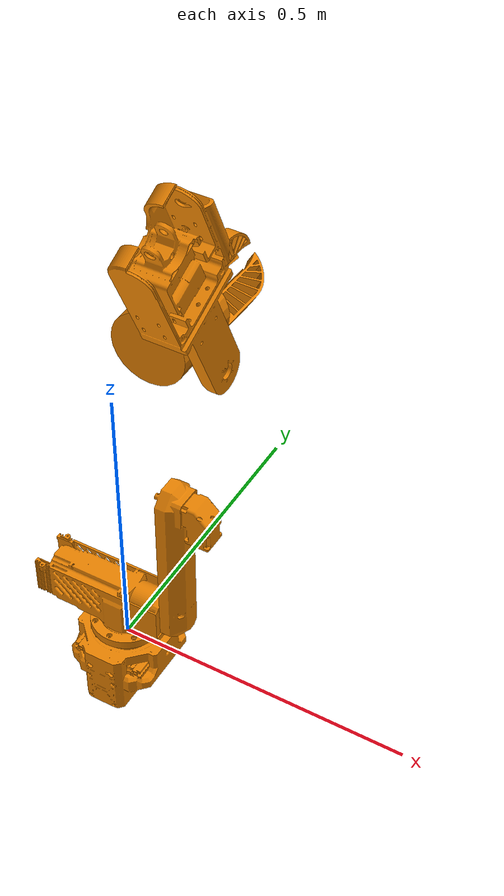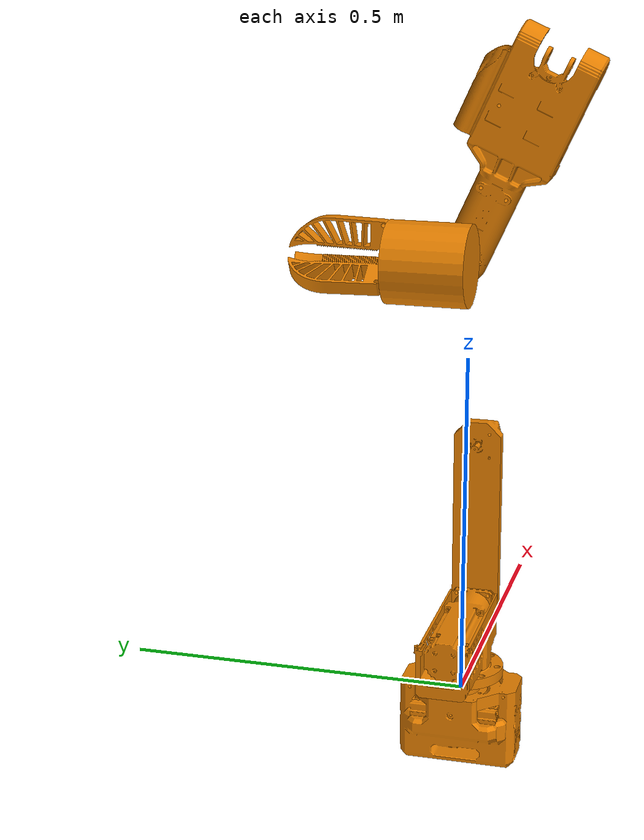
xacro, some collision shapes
<?xml version="1.0"?>
<robot xmlns:xacro="http://www.ros.org/wiki/xacro" name="test_rover_body">

  <xacro:include filename="$(find rover_arm_description)/urdf/rover_arm.urdf.xacro" />

  <link name="base_link"/>

  <xacro:rover_arm prefix="" parent="base_link">
    <origin xyz="0 0 0" rpy="0 0 0" />
  </xacro:rover_arm>

</robot>

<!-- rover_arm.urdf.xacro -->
<robot xmlns:xacro="http://www.ros.org/wiki/xacro" name="rover_arm">

  <xacro:macro name="rover_arm" params="parent prefix *origin">

  <!-- LINK OFFSETS -->
  <xacro:property name="base_rotation_offset" value="${pi / 2} 0 0" />
  <xacro:property name="j1_rotation_offset" value="${pi / 2} 0 0" />
  <xacro:property name="j2_rotation_offset" value="${pi / 6} 0 0" />
  <xacro:property name="j3_rotation_offset" value="${pi - 0.4366117} 0 0" />

  <!-- JOINT POSITIONS -->
  <xacro:property name="j1_joint_pos" value="0 0 0.024" />
  <xacro:property name="j2_joint_pos" value="0.0808 0 0.071" />
  <xacro:property name="j3_joint_pos" value="0.007 0 0.25" />
  <xacro:property name="ee_base_joint_pos" value="-0.028 0 0.2715" />
  <xacro:property name="slider_joint_pos" value="0 0.11 0" />
  <xacro:property name="finger1_joint_pos" value="-0.052384 0.134522 -0.016965" />
  <xacro:property name="finger1_joint_rotation" value="0 ${-pi / 6} 0" />
  <xacro:property name="finger2_joint_pos" value="0.011500 0.134522 0.053848" />
  <xacro:property name="finger2_joint_rotation" value="0 ${pi / 2} 0" />
  <xacro:property name="finger3_joint_pos" value="0.040884 0.134522 -0.036883" />
  <xacro:property name="finger3_joint_rotation" value="0 ${pi * 7 / 6} 0" />

  <!-- COLORS -->
  <!-- links color -->
  <material name="${prefix}links_color">
    <color rgba="0.9 0.5 0.0 1.0"/>
  </material>

  <!-- SLIDER TO FINGER CINEMATIC RELATION -->
  <xacro:property name="slider_length" value="0.05" />
  <xacro:property name="finger_rotation_upper_bound" value="${pi / 2}" />
  <!-- the formula used to calculate the multiplier is given by the total rotation distance divided by the total sliding distance -->
  <xacro:property name="relation_multip" value="${finger_rotation_upper_bound / slider_length}" />

  <!-- BASE LINK -->
  <link name="${prefix}base">
    <visual>
      <origin xyz="0 0 0" rpy="${base_rotation_offset}"/>
      <geometry>
        <mesh filename="package://rover_arm_description/meshes/visual/base.stl" scale="0.001 0.001 0.001"/>
      </geometry>
      <material name="${prefix}links_color"/>
    </visual>
    <collision>
      <origin xyz="0 0.015 -0.022" rpy="0 0 0"/>
      <geometry>
        <box size="0.153000 0.202000 0.122040"/>
      </geometry>
    </collision>
  </link>

  <link name="${prefix}j1">
    <visual>
      <origin xyz="0 0 0" rpy="${j1_rotation_offset}"/>
      <geometry>
        <mesh filename="package://rover_arm_description/meshes/visual/j1.stl" scale="0.001 0.001 0.001"/>
      </geometry>
      <material name="${prefix}links_color"/>
    </visual>
    <collision>
      <origin xyz="-0.035 0 0.065" rpy="0 0 0"/>
      <geometry>
        <box size="0.23 0.07 0.08"/>
      </geometry>
    </collision>
  </link>

  <link name="${prefix}j2">
    <visual>
      <origin xyz="0 0 0" rpy="${j2_rotation_offset}"/>
      <geometry>
        <mesh filename="package://rover_arm_description/meshes/visual/j2.stl" scale="0.001 0.001 0.001"/>
      </geometry>
      <material name="${prefix}links_color"/>
    </visual>
    <collision>
      <origin xyz="${0.05 / 2} 0 ${0.25 / 2}" rpy="0 0 0"/>
      <geometry>
        <box size="0.05 0.05 0.32"/>
      </geometry>
    </collision>
    <collision>
      <origin xyz="${0.05 + 0.05 / 2} 0 0.185" rpy="0 0 0"/>
      <geometry>
        <box size="0.05 0.05 0.17"/>
      </geometry>
    </collision>
  </link>

  <link name="${prefix}j3">
    <visual>
      <origin xyz="0 0 0" rpy="${j3_rotation_offset}"/>
      <geometry>
        <mesh filename="package://rover_arm_description/meshes/visual/j3.stl" scale="0.001 0.001 0.001"/>
      </geometry>
      <material name="${prefix}links_color"/>
    </visual>
    <collision>
      <origin xyz="${-0.05 / 2} 0 0.04" rpy="0 0 0"/>
      <geometry>
        <box size="0.05 0.07 0.15"/>
      </geometry>
    </collision>
    <collision>
      <origin xyz="${-0.05 / 2} 0 0.2" rpy="0 0 0"/>
      <geometry>
        <box size="0.13 0.07 0.2"/>
      </geometry>
    </collision>
    <collision>
      <origin xyz="${-(0.05 + 0.13 + 0.04) / 2} 0 0.195" rpy="0 0 0"/>
      <geometry>
        <box size="0.04 0.07 0.13"/>
      </geometry>
    </collision>
  </link>

  <!-- END EFFECTOR BASE -->
  <link name="${prefix}ee_base">
    <visual>
      <origin xyz="0 0.018007 0" rpy="0 0 0"/>
      <geometry>
        <mesh filename="package://rover_arm_description/meshes/visual/end_effector_base.stl" scale="0.001 0.001 0.001"/>
      </geometry>
      <material name="${prefix}links_color"/>
    </visual>
    <collision>
      <origin xyz="0 0.07 0" rpy="${pi / 2} 0 0"/>
      <geometry>
        <cylinder radius="0.06" length="0.12"/>
      </geometry>
    </collision>
  </link>

  <!-- END EFFECTOR SLIDER -->
  <link name="${prefix}ee_slider">
    <visual>
      <origin xyz="0 0 0" rpy="0 0 0"/>
      <geometry>
        <mesh filename="package://rover_arm_description/meshes/visual/end_effector_slider.stl" scale="0.001 0.001 0.001"/>
      </geometry>
      <material name="${prefix}links_color"/>
    </visual>
  </link>

  <!-- END EFFECTOR FINGERS -->
  <!-- finger 1 -->
  <link name="${prefix}ee_finger1">
    <visual>
      <origin xyz="0 0 0" rpy="0 0 0"/>
      <geometry>
        <mesh filename="package://rover_arm_description/meshes/visual/end_effector_finger.stl" scale="0.001 0.001 0.001"/>
      </geometry>
      <material name="${prefix}links_color"/>
    </visual>
    <collision>
      <origin xyz="0.016 ${0.14 / 2} ${- 0.022 / 2}" rpy="0 0 0"/>
      <geometry>
        <box size="0.042 0.14 0.022"/>
      </geometry>
    </collision>
  </link>

  <!-- finger 2 -->
  <link name="${prefix}ee_finger2">
    <visual>
      <origin xyz="0 0 0" rpy="0 0 0"/>
      <geometry>
        <mesh filename="package://rover_arm_description/meshes/visual/end_effector_finger.stl" scale="0.001 0.001 0.001"/>
      </geometry>
      <material name="${prefix}links_color"/>
    </visual>
    <collision>
      <origin xyz="0.016 ${0.14 / 2} ${- 0.022 / 2}" rpy="0 0 0"/>
      <geometry>
        <box size="0.042 0.14 0.022"/>
      </geometry>
    </collision>
  </link>

  <!-- finger 3 -->
  <link name="${prefix}ee_finger3">
    <visual>
      <origin xyz="0 0 0" rpy="0 0 0"/>
      <geometry>
        <mesh filename="package://rover_arm_description/meshes/visual/end_effector_finger.stl" scale="0.001 0.001 0.001"/>
      </geometry>
      <material name="${prefix}links_color"/>
    </visual>
    <collision>
      <origin xyz="0.016 ${0.14 / 2} ${- 0.022 / 2}" rpy="0 0 0"/>
      <geometry>
        <box size="0.042 0.14 0.022"/>
      </geometry>
    </collision>
  </link>

  <joint name="${prefix}mount_joint" type="fixed">
    <parent link="${parent}"/>
    <child link="${prefix}base"/>
    <xacro:insert_block name="origin"/>
  </joint>

  <!-- CONNECT J1 TO THE BASE -->
  <joint name="${prefix}j1_joint" type="continuous">
    <parent link="${prefix}base"/>
    <child link="${prefix}j1"/>
    <origin xyz="${j1_joint_pos}" rpy="0 0 0"/>
    <!-- Rotation Axis -->
    <axis xyz="0 0 1"/>
  </joint>

  <!-- CONNECT J2 TO J1 -->
  <joint name="${prefix}j2_joint" type="revolute">
    <parent link="${prefix}j1"/>
    <child link="${prefix}j2"/>
    <origin xyz="${j2_joint_pos}" rpy="0 0 0"/>
    <!-- Rotation Axis -->
    <axis xyz="1 0 0"/>
    <!-- Limits -->
    <limit lower="${-pi / 2}" upper="${pi / 2}" effort="50.0" velocity="1.0"/>
  </joint>

  <!-- CONNECT J3 TO J2 -->
  <joint name="${prefix}j3_joint" type="revolute">
    <parent link="${prefix}j2"/>
    <child link="${prefix}j3"/>
    <!-- Positioning and origin of j4 based from j3 -->
    <origin xyz="${j3_joint_pos}" rpy="0 0 0"/>
    <!-- Rotation Axis -->
    <axis xyz="1 0 0"/>
    <!-- Limits -->
    <limit lower="${-pi / 2}" upper="${pi / 2}" effort="50.0" velocity="1.0"/>
  </joint>

  <!-- CONNECT THE END EFFECTOR BASE TO J3 -->
  <link name="${prefix}ee_base_dummy"/> <!-- needed since urdf does not allow child with multiple parents, so this is a dummy-parent -->
  <joint name="${prefix}ee_base_joint_x" type="revolute">
    <parent link="${prefix}j3"/>
    <child link="${prefix}ee_base_dummy"/>
    <origin xyz="${ee_base_joint_pos}" rpy="0 0 0"/>
    <!-- Rotation Axis -->
    <axis xyz="1 0 0"/>
    <!-- Limits -->
    <limit lower="${pi}" upper="0" effort="50.0" velocity="1.0"/>
  </joint>
  <joint name="${prefix}ee_base_joint_y" type="continuous">
    <parent link="${prefix}ee_base_dummy"/>
    <child link="${prefix}ee_base"/>
    <origin xyz="0 0 0" rpy="0 0 0"/>
    <!-- Rotation Axis -->
    <axis xyz="0 1 0"/>
  </joint>

  <!-- CONNECT THE SLIDER TO THE END EFFECTOR BASE -->
  <joint name="${prefix}slider_joint" type="prismatic">
    <parent link="${prefix}ee_base"/>
    <child link="${prefix}ee_slider"/>
    <origin xyz="${slider_joint_pos}" rpy="0 0 0"/>
    <!-- Sliding Axis -->
    <axis xyz="0 1 0"/>
    <!-- Limits -->
    <limit lower="0.0" upper="${slider_length}" effort="50.0" velocity="1.0"/>
  </joint>

  <!-- CONNECT THE FINGERS TO THE END EFFECTOR BASE -->
  <!-- finger 1 joint-->
  <joint name="${prefix}finger1_joint" type="revolute">
    <parent link="${prefix}ee_base"/>
    <child link="${prefix}ee_finger1"/>
    <origin xyz="${finger1_joint_pos}" rpy="${finger1_joint_rotation}"/>
    <!-- Sliding Axis -->
    <axis xyz="0 0 1"/>
    <!-- Limits -->
    <limit lower="0.0" upper="${finger_rotation_upper_bound}" effort="50.0" velocity="1.0"/>
    <mimic joint="${prefix}slider_joint" multiplier="${relation_multip}" offset="0.0"/>
  </joint>

  <!-- finger 2 joint-->
  <joint name="${prefix}finger2_joint" type="revolute">
    <parent link="${prefix}ee_base"/>
    <child link="${prefix}ee_finger2"/>
    <origin xyz="${finger2_joint_pos}" rpy="${finger2_joint_rotation}"/>
    <!-- Sliding Axis -->
    <axis xyz="0 0 1"/>
    <!-- Limits -->
    <limit lower="0.0" upper="${finger_rotation_upper_bound}" effort="50.0" velocity="1.0"/>
    <mimic joint="${prefix}slider_joint" multiplier="${relation_multip}" offset="0.0"/>
  </joint>

  <!-- finger 3 joint-->
  <joint name="${prefix}finger3_joint" type="revolute">
    <parent link="${prefix}ee_base"/>
    <child link="${prefix}ee_finger3"/>
    <origin xyz="${finger3_joint_pos}" rpy="${finger3_joint_rotation}"/>
    <!-- Sliding Axis -->
    <axis xyz="0 0 1"/>
    <!-- Limits -->
    <limit lower="0.0" upper="${finger_rotation_upper_bound}" effort="50.0" velocity="1.0"/>
    <mimic joint="${prefix}slider_joint" multiplier="${relation_multip}" offset="0.0"/>
  </joint>

  </xacro:macro>

</robot>
